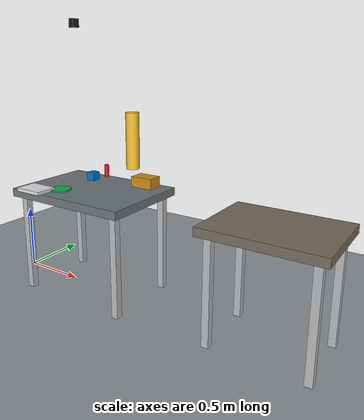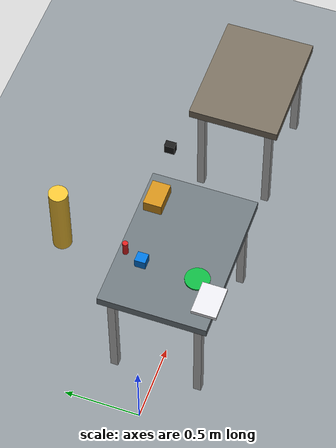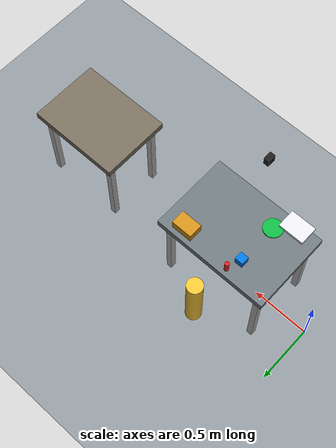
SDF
<?xml version="1.0" ?>
<sdf version="1.6">
  <world name="robot_lab_minimal">
    <physics name="default_physics" type="ode">
      <max_step_size>0.001</max_step_size>
      <real_time_factor>1.0</real_time_factor>
    </physics>

    <plugin name="gazebo_ros_state" filename="libgazebo_ros_state.so">
      <ros>
        <namespace>/gazebo</namespace>
      </ros>
      <update_rate>30.0</update_rate>
    </plugin>

    <scene>
      <ambient>0.6 0.6 0.6 1</ambient>
      <background>0.92 0.94 0.96 1</background>
    </scene>

    <light name="lab_key_light" type="directional">
      <pose>0 0 4 0.5 0.2 0</pose>
      <diffuse>0.8 0.8 0.8 1</diffuse>
      <specular>0.2 0.2 0.2 1</specular>
      <direction>-0.5 0.2 -1</direction>
    </light>

    <model name="ground_plane">
      <static>true</static>
      <link name="link">
        <collision name="collision">
          <geometry>
            <plane>
              <normal>0 0 1</normal>
              <size>5 5</size>
            </plane>
          </geometry>
        </collision>
        <visual name="visual">
          <geometry>
            <plane>
              <normal>0 0 1</normal>
              <size>5 5</size>
            </plane>
          </geometry>
          <material>
            <ambient>0.55 0.58 0.60 1</ambient>
            <diffuse>0.55 0.58 0.60 1</diffuse>
          </material>
        </visual>
      </link>
    </model>

    <model name="lab_workbench">
      <static>true</static>
      <pose>0.75 0 0.78 0 0 0</pose>
      <link name="top">
        <collision name="collision">
          <geometry>
            <box>
              <size>1.0 0.7 0.06</size>
            </box>
          </geometry>
        </collision>
        <visual name="visual">
          <geometry>
            <box>
              <size>1.0 0.7 0.06</size>
            </box>
          </geometry>
          <material>
            <ambient>0.42 0.46 0.48 1</ambient>
            <diffuse>0.42 0.46 0.48 1</diffuse>
          </material>
        </visual>
      </link>
      <link name="left_front_leg">
        <pose>0.43 0.28 -0.39 0 0 0</pose>
        <collision name="collision">
          <geometry>
            <box>
              <size>0.05 0.05 0.78</size>
            </box>
          </geometry>
        </collision>
        <visual name="visual">
          <geometry>
            <box>
              <size>0.05 0.05 0.78</size>
            </box>
          </geometry>
        </visual>
      </link>
      <link name="right_front_leg">
        <pose>0.43 -0.28 -0.39 0 0 0</pose>
        <collision name="collision">
          <geometry>
            <box>
              <size>0.05 0.05 0.78</size>
            </box>
          </geometry>
        </collision>
        <visual name="visual">
          <geometry>
            <box>
              <size>0.05 0.05 0.78</size>
            </box>
          </geometry>
        </visual>
      </link>
      <link name="left_rear_leg">
        <pose>-0.43 0.28 -0.39 0 0 0</pose>
        <collision name="collision">
          <geometry>
            <box>
              <size>0.05 0.05 0.78</size>
            </box>
          </geometry>
        </collision>
        <visual name="visual">
          <geometry>
            <box>
              <size>0.05 0.05 0.78</size>
            </box>
          </geometry>
        </visual>
      </link>
      <link name="right_rear_leg">
        <pose>-0.43 -0.28 -0.39 0 0 0</pose>
        <collision name="collision">
          <geometry>
            <box>
              <size>0.05 0.05 0.78</size>
            </box>
          </geometry>
        </collision>
        <visual name="visual">
          <geometry>
            <box>
              <size>0.05 0.05 0.78</size>
            </box>
          </geometry>
        </visual>
      </link>
    </model>

    <model name="sample_block">
      <static>false</static>
      <pose>0.58 0.18 0.84 0 0 0</pose>
      <link name="link">
        <inertial>
          <mass>0.1</mass>
          <inertia>
            <ixx>0.00005</ixx>
            <iyy>0.00005</iyy>
            <izz>0.00005</izz>
          </inertia>
        </inertial>
        <collision name="collision">
          <geometry>
            <box>
              <size>0.07 0.07 0.07</size>
            </box>
          </geometry>
        </collision>
        <visual name="visual">
          <geometry>
            <box>
              <size>0.07 0.07 0.07</size>
            </box>
          </geometry>
          <material>
            <ambient>0.0 0.45 0.85 1</ambient>
            <diffuse>0.0 0.45 0.85 1</diffuse>
          </material>
        </visual>
      </link>
    </model>

    <model name="target_pad">
      <static>true</static>
      <pose>0.58 -0.18 0.815 0 0 0</pose>
      <link name="link">
        <visual name="visual">
          <geometry>
            <cylinder>
              <radius>0.08</radius>
              <length>0.01</length>
            </cylinder>
          </geometry>
          <material>
            <ambient>0.05 0.7 0.25 1</ambient>
            <diffuse>0.05 0.7 0.25 1</diffuse>
          </material>
        </visual>
      </link>
    </model>

    <!-- Manipulable red vial: second grasp target for multi-task runs. -->
    <model name="sample_vial_red">
      <static>false</static>
      <pose>0.62 0.30 0.865 0 0 0</pose>
      <link name="link">
        <inertial>
          <mass>0.05</mass>
          <inertia>
            <ixx>0.00005</ixx>
            <iyy>0.00005</iyy>
            <izz>0.00001</izz>
          </inertia>
        </inertial>
        <collision name="collision">
          <geometry>
            <cylinder>
              <radius>0.018</radius>
              <length>0.10</length>
            </cylinder>
          </geometry>
        </collision>
        <visual name="visual">
          <geometry>
            <cylinder>
              <radius>0.018</radius>
              <length>0.10</length>
            </cylinder>
          </geometry>
          <material>
            <ambient>0.85 0.12 0.12 1</ambient>
            <diffuse>0.85 0.12 0.12 1</diffuse>
          </material>
        </visual>
      </link>
    </model>

    <!-- Sample tray: secondary place target on the bench. -->
    <model name="sample_tray">
      <static>true</static>
      <pose>0.45 -0.30 0.8225 0 0 0</pose>
      <link name="link">
        <collision name="collision">
          <geometry>
            <box>
              <size>0.22 0.16 0.025</size>
            </box>
          </geometry>
        </collision>
        <visual name="visual">
          <geometry>
            <box>
              <size>0.22 0.16 0.025</size>
            </box>
          </geometry>
          <material>
            <ambient>0.88 0.88 0.90 1</ambient>
            <diffuse>0.88 0.88 0.90 1</diffuse>
          </material>
        </visual>
      </link>
    </model>

    <!-- Decorative tool caddy: enriches the lab scene at the bench corner. -->
    <model name="tool_caddy">
      <static>true</static>
      <pose>1.05 0.25 0.85 0 0 0</pose>
      <link name="link">
        <collision name="collision">
          <geometry>
            <box>
              <size>0.18 0.12 0.08</size>
            </box>
          </geometry>
        </collision>
        <visual name="visual">
          <geometry>
            <box>
              <size>0.18 0.12 0.08</size>
            </box>
          </geometry>
          <material>
            <ambient>0.80 0.55 0.10 1</ambient>
            <diffuse>0.80 0.55 0.10 1</diffuse>
          </material>
        </visual>
      </link>
    </model>

    <model name="station_b">
      <static>true</static>
      <pose>2.2 0 0.78 0 0 0</pose>
      <link name="top">
        <collision name="collision">
          <geometry>
            <box>
              <size>0.8 0.6 0.06</size>
            </box>
          </geometry>
        </collision>
        <visual name="visual">
          <geometry>
            <box>
              <size>0.8 0.6 0.06</size>
            </box>
          </geometry>
          <material>
            <ambient>0.46 0.42 0.36 1</ambient>
            <diffuse>0.46 0.42 0.36 1</diffuse>
          </material>
        </visual>
      </link>
      <link name="left_leg">
        <pose>0.33 0.23 -0.39 0 0 0</pose>
        <collision name="collision">
          <geometry>
            <box>
              <size>0.05 0.05 0.78</size>
            </box>
          </geometry>
        </collision>
        <visual name="visual">
          <geometry>
            <box>
              <size>0.05 0.05 0.78</size>
            </box>
          </geometry>
        </visual>
      </link>
      <link name="right_leg">
        <pose>0.33 -0.23 -0.39 0 0 0</pose>
        <collision name="collision">
          <geometry>
            <box>
              <size>0.05 0.05 0.78</size>
            </box>
          </geometry>
        </collision>
        <visual name="visual">
          <geometry>
            <box>
              <size>0.05 0.05 0.78</size>
            </box>
          </geometry>
        </visual>
      </link>
      <link name="left_rear_leg">
        <pose>-0.33 0.23 -0.39 0 0 0</pose>
        <collision name="collision">
          <geometry>
            <box>
              <size>0.05 0.05 0.78</size>
            </box>
          </geometry>
        </collision>
        <visual name="visual">
          <geometry>
            <box>
              <size>0.05 0.05 0.78</size>
            </box>
          </geometry>
        </visual>
      </link>
      <link name="right_rear_leg">
        <pose>-0.33 -0.23 -0.39 0 0 0</pose>
        <collision name="collision">
          <geometry>
            <box>
              <size>0.05 0.05 0.78</size>
            </box>
          </geometry>
        </collision>
        <visual name="visual">
          <geometry>
            <box>
              <size>0.05 0.05 0.78</size>
            </box>
          </geometry>
        </visual>
      </link>
    </model>

    <!-- Dynamic obstacle proxy parked outside the bench area by default. -->
    <model name="moving_obstacle">
      <static>false</static>
      <pose>0.58 0.7 1.05 0 0 0</pose>
      <link name="link">
        <gravity>false</gravity>
        <inertial>
          <mass>0.5</mass>
          <inertia>
            <ixx>0.02</ixx>
            <iyy>0.02</iyy>
            <izz>0.005</izz>
          </inertia>
        </inertial>
        <collision name="collision">
          <geometry>
            <cylinder>
              <radius>0.06</radius>
              <length>0.5</length>
            </cylinder>
          </geometry>
        </collision>
        <visual name="visual">
          <geometry>
            <cylinder>
              <radius>0.06</radius>
              <length>0.5</length>
            </cylinder>
          </geometry>
          <material>
            <ambient>0.95 0.75 0.20 1</ambient>
            <diffuse>0.95 0.75 0.20 1</diffuse>
          </material>
        </visual>
      </link>
    </model>

    <model name="bench_camera">
      <static>true</static>
      <pose>0.62 0 2.0 0 1.5708 0</pose>
      <link name="bench_camera_link">
        <visual name="visual">
          <geometry>
            <box>
              <size>0.06 0.06 0.04</size>
            </box>
          </geometry>
          <material>
            <ambient>0.1 0.1 0.1 1</ambient>
            <diffuse>0.1 0.1 0.1 1</diffuse>
          </material>
        </visual>
        <sensor name="bench_rgbd" type="depth">
          <always_on>true</always_on>
          <visualize>false</visualize>
          <update_rate>5</update_rate>
          <camera>
            <horizontal_fov>1.05</horizontal_fov>
            <image>
              <width>640</width>
              <height>480</height>
            </image>
            <clip>
              <near>0.1</near>
              <far>5.0</far>
            </clip>
          </camera>
          <plugin name="bench_camera_ros" filename="libgazebo_ros_camera.so">
            <ros>
              <remapping>image_raw:=image</remapping>
            </ros>
            <camera_name>bench_camera</camera_name>
            <frame_name>bench_camera_optical_frame</frame_name>
            <min_depth>0.1</min_depth>
            <max_depth>5.0</max_depth>
          </plugin>
        </sensor>
      </link>
    </model>
  </world>
</sdf>
